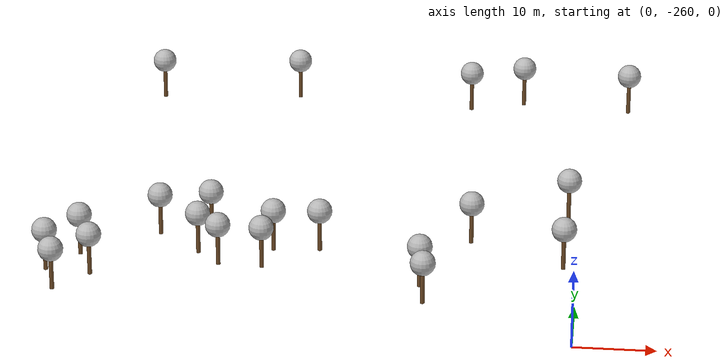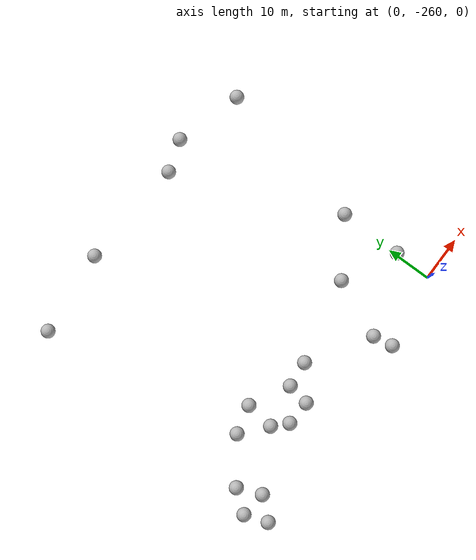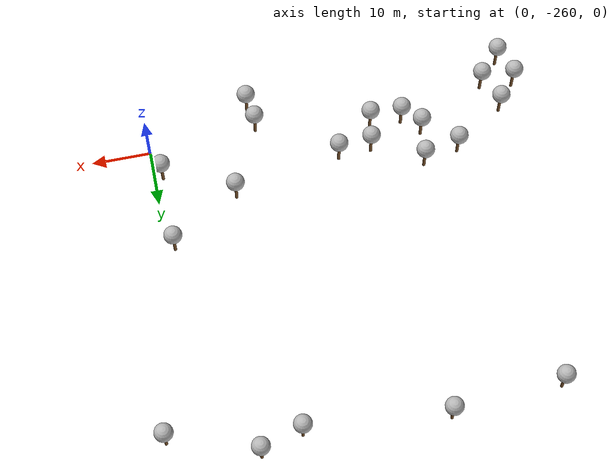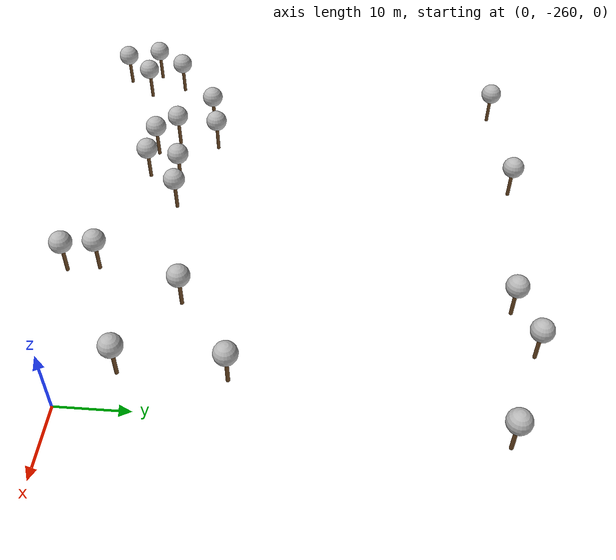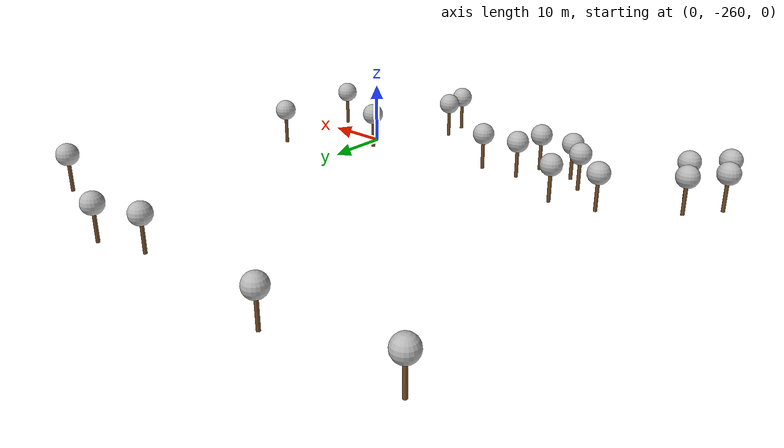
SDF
<sdf version="1.7">
 <world name="default">
  <model name="tree_simple_0_clone_2">
   <static>1</static>
   <link name="link">
    <pose>0 0 0.1 0 -0 0</pose>
    <inertial>
     <mass>666</mass>
     <inertia>
      <ixx>0.0861167</ixx>
      <ixy>0</ixy>
      <ixz>0</ixz>
      <iyy>0.0861167</iyy>
      <iyz>0</iyz>
      <izz>0.0861167</izz>
     </inertia>
    </inertial>
    <collision name="collision_trunk">
     <pose>0 0 2 0 -0 0</pose>
     <geometry><cylinder><radius>0.25</radius><length>4</length></cylinder></geometry>
     <surface>
      <contact>
       <poissons_ratio>0.347</poissons_ratio>
       <elastic_modulus>8.8e+09</elastic_modulus>
       <ode><kp>100000</kp><kd>100</kd><max_vel>100</max_vel><min_depth>0.001</min_depth></ode>
      </contact>
      <friction>
       <torsional>
        <coefficient>1</coefficient>
        <use_patch_radius>0</use_patch_radius>
        <surface_radius>0.01</surface_radius>
       </torsional>
      </friction>
     </surface>
    </collision>
    <collision name="collision_treetop">
     <pose>0 0 5.2 0 -0 0</pose>
     <geometry><sphere><radius>1.5</radius></sphere></geometry>
     <surface>
      <contact>
       <poissons_ratio>0.347</poissons_ratio>
       <elastic_modulus>8.8e+09</elastic_modulus>
       <ode><kp>100000</kp><kd>100</kd><max_vel>100</max_vel><min_depth>0.001</min_depth></ode>
      </contact>
      <friction>
       <torsional>
        <coefficient>1</coefficient>
        <use_patch_radius>0</use_patch_radius>
        <surface_radius>0.01</surface_radius>
       </torsional>
      </friction>
     </surface>
    </collision>
    <visual name="trunk">
     <pose>0 0 2 0 -0 0</pose>
     <geometry><cylinder><radius>0.25</radius><length>4</length></cylinder></geometry>
     <material>
      <script>
       <uri>model://tree_simple/scripts</uri>
       <uri>model://tree_simple/materials/textures</uri>
       <name>TreeSimple/Trunk</name>
      </script>
     </material>
    </visual>
    <visual name="treetop">
     <pose>0 0 5.2 0 -0 0</pose>
     <geometry><sphere><radius>1.5</radius></sphere></geometry>
     <material>
      <script>
       <uri>model://tree_simple/scripts</uri>
       <uri>model://tree_simple/materials/textures</uri>
       <name>TreeSimple/Treetop</name>
      </script>
     </material>
    </visual>
   </link>
   <pose>-50.3149 -246.75 5.69981 0 -0 0</pose>
  </model>
  <model name="tree_simple_0_clone_2_clone_0">
   <static>1</static>
   <link name="link">
    <pose>0 0 0.1 0 -0 0</pose>
    <inertial>
     <mass>666</mass>
     <inertia>
      <ixx>0.0861167</ixx>
      <ixy>0</ixy>
      <ixz>0</ixz>
      <iyy>0.0861167</iyy>
      <iyz>0</iyz>
      <izz>0.0861167</izz>
     </inertia>
    </inertial>
    <collision name="collision_trunk">
     <pose>0 0 2 0 -0 0</pose>
     <geometry><cylinder><radius>0.25</radius><length>4</length></cylinder></geometry>
     <surface>
      <contact>
       <poissons_ratio>0.347</poissons_ratio>
       <elastic_modulus>8.8e+09</elastic_modulus>
       <ode><kp>100000</kp><kd>100</kd><max_vel>100</max_vel><min_depth>0.001</min_depth></ode>
      </contact>
      <friction>
       <torsional>
        <coefficient>1</coefficient>
        <use_patch_radius>0</use_patch_radius>
        <surface_radius>0.01</surface_radius>
       </torsional>
      </friction>
     </surface>
    </collision>
    <collision name="collision_treetop">
     <pose>0 0 5.2 0 -0 0</pose>
     <geometry><sphere><radius>1.5</radius></sphere></geometry>
     <surface>
      <contact>
       <poissons_ratio>0.347</poissons_ratio>
       <elastic_modulus>8.8e+09</elastic_modulus>
       <ode><kp>100000</kp><kd>100</kd><max_vel>100</max_vel><min_depth>0.001</min_depth></ode>
      </contact>
      <friction>
       <torsional>
        <coefficient>1</coefficient>
        <use_patch_radius>0</use_patch_radius>
        <surface_radius>0.01</surface_radius>
       </torsional>
      </friction>
     </surface>
    </collision>
    <visual name="trunk">
     <pose>0 0 2 0 -0 0</pose>
     <geometry><cylinder><radius>0.25</radius><length>4</length></cylinder></geometry>
     <material>
      <script>
       <uri>model://tree_simple/scripts</uri>
       <uri>model://tree_simple/materials/textures</uri>
       <name>TreeSimple/Trunk</name>
      </script>
     </material>
    </visual>
    <visual name="treetop">
     <pose>0 0 5.2 0 -0 0</pose>
     <geometry><sphere><radius>1.5</radius></sphere></geometry>
     <material>
      <script>
       <uri>model://tree_simple/scripts</uri>
       <uri>model://tree_simple/materials/textures</uri>
       <name>TreeSimple/Treetop</name>
      </script>
     </material>
    </visual>
   </link>
   <pose>-42.3253 -254.089 5.69982 0 -0 0</pose>
  </model>
  <model name="tree_simple_0_clone_1_clone_0_clone_0">
   <static>1</static>
   <link name="link">
    <pose>0 0 0.1 0 -0 0</pose>
    <inertial>
     <mass>666</mass>
     <inertia>
      <ixx>0.0861167</ixx>
      <ixy>0</ixy>
      <ixz>0</ixz>
      <iyy>0.0861167</iyy>
      <iyz>0</iyz>
      <izz>0.0861167</izz>
     </inertia>
    </inertial>
    <collision name="collision_trunk">
     <pose>0 0 2 0 -0 0</pose>
     <geometry><cylinder><radius>0.25</radius><length>4</length></cylinder></geometry>
     <surface>
      <contact>
       <poissons_ratio>0.347</poissons_ratio>
       <elastic_modulus>8.8e+09</elastic_modulus>
       <ode><kp>100000</kp><kd>100</kd><max_vel>100</max_vel><min_depth>0.001</min_depth></ode>
      </contact>
      <friction>
       <torsional>
        <coefficient>1</coefficient>
        <use_patch_radius>0</use_patch_radius>
        <surface_radius>0.01</surface_radius>
       </torsional>
      </friction>
     </surface>
    </collision>
    <collision name="collision_treetop">
     <pose>0 0 5.2 0 -0 0</pose>
     <geometry><sphere><radius>1.5</radius></sphere></geometry>
     <surface>
      <contact>
       <poissons_ratio>0.347</poissons_ratio>
       <elastic_modulus>8.8e+09</elastic_modulus>
       <ode><kp>100000</kp><kd>100</kd><max_vel>100</max_vel><min_depth>0.001</min_depth></ode>
      </contact>
      <friction>
       <torsional>
        <coefficient>1</coefficient>
        <use_patch_radius>0</use_patch_radius>
        <surface_radius>0.01</surface_radius>
       </torsional>
      </friction>
     </surface>
    </collision>
    <visual name="trunk">
     <pose>0 0 2 0 -0 0</pose>
     <geometry><cylinder><radius>0.25</radius><length>4</length></cylinder></geometry>
     <material>
      <script>
       <uri>model://tree_simple/scripts</uri>
       <uri>model://tree_simple/materials/textures</uri>
       <name>TreeSimple/Trunk</name>
      </script>
     </material>
    </visual>
    <visual name="treetop">
     <pose>0 0 5.2 0 -0 0</pose>
     <geometry><sphere><radius>1.5</radius></sphere></geometry>
     <material>
      <script>
       <uri>model://tree_simple/scripts</uri>
       <uri>model://tree_simple/materials/textures</uri>
       <name>TreeSimple/Treetop</name>
      </script>
     </material>
    </visual>
   </link>
   <pose>-38.3659 -201.664 4.24809 0 -0 0</pose>
  </model>
  <model name="tree_simple_0_clone_1_clone_0_clone_3">
   <static>1</static>
   <link name="link">
    <pose>0 0 0.1 0 -0 0</pose>
    <inertial>
     <mass>666</mass>
     <inertia>
      <ixx>0.0861167</ixx>
      <ixy>0</ixy>
      <ixz>0</ixz>
      <iyy>0.0861167</iyy>
      <iyz>0</iyz>
      <izz>0.0861167</izz>
     </inertia>
    </inertial>
    <collision name="collision_trunk">
     <pose>0 0 2 0 -0 0</pose>
     <geometry><cylinder><radius>0.25</radius><length>4</length></cylinder></geometry>
     <surface>
      <contact>
       <poissons_ratio>0.347</poissons_ratio>
       <elastic_modulus>8.8e+09</elastic_modulus>
       <ode><kp>100000</kp><kd>100</kd><max_vel>100</max_vel><min_depth>0.001</min_depth></ode>
      </contact>
      <friction>
       <torsional>
        <coefficient>1</coefficient>
        <use_patch_radius>0</use_patch_radius>
        <surface_radius>0.01</surface_radius>
       </torsional>
      </friction>
     </surface>
    </collision>
    <collision name="collision_treetop">
     <pose>0 0 5.2 0 -0 0</pose>
     <geometry><sphere><radius>1.5</radius></sphere></geometry>
     <surface>
      <contact>
       <poissons_ratio>0.347</poissons_ratio>
       <elastic_modulus>8.8e+09</elastic_modulus>
       <ode><kp>100000</kp><kd>100</kd><max_vel>100</max_vel><min_depth>0.001</min_depth></ode>
      </contact>
      <friction>
       <torsional>
        <coefficient>1</coefficient>
        <use_patch_radius>0</use_patch_radius>
        <surface_radius>0.01</surface_radius>
       </torsional>
      </friction>
     </surface>
    </collision>
    <visual name="trunk">
     <pose>0 0 2 0 -0 0</pose>
     <geometry><cylinder><radius>0.25</radius><length>4</length></cylinder></geometry>
     <material>
      <script>
       <uri>model://tree_simple/scripts</uri>
       <uri>model://tree_simple/materials/textures</uri>
       <name>TreeSimple/Trunk</name>
      </script>
     </material>
    </visual>
    <visual name="treetop">
     <pose>0 0 5.2 0 -0 0</pose>
     <geometry><sphere><radius>1.5</radius></sphere></geometry>
     <material>
      <script>
       <uri>model://tree_simple/scripts</uri>
       <uri>model://tree_simple/materials/textures</uri>
       <name>TreeSimple/Treetop</name>
      </script>
     </material>
    </visual>
   </link>
   <pose>-15.3553 -203.531 4.24809 0 -0 0</pose>
  </model>
  <model name="tree_simple_0_clone_1_clone_0_clone_3_clone_2">
   <static>1</static>
   <link name="link">
    <pose>0 0 0.1 0 -0 0</pose>
    <inertial>
     <mass>666</mass>
     <inertia>
      <ixx>0.0861167</ixx>
      <ixy>0</ixy>
      <ixz>0</ixz>
      <iyy>0.0861167</iyy>
      <iyz>0</iyz>
      <izz>0.0861167</izz>
     </inertia>
    </inertial>
    <collision name="collision_trunk">
     <pose>0 0 2 0 -0 0</pose>
     <geometry><cylinder><radius>0.25</radius><length>4</length></cylinder></geometry>
     <surface>
      <contact>
       <poissons_ratio>0.347</poissons_ratio>
       <elastic_modulus>8.8e+09</elastic_modulus>
       <ode><kp>100000</kp><kd>100</kd><max_vel>100</max_vel><min_depth>0.001</min_depth></ode>
      </contact>
      <friction>
       <torsional>
        <coefficient>1</coefficient>
        <use_patch_radius>0</use_patch_radius>
        <surface_radius>0.01</surface_radius>
       </torsional>
      </friction>
     </surface>
    </collision>
    <collision name="collision_treetop">
     <pose>0 0 5.2 0 -0 0</pose>
     <geometry><sphere><radius>1.5</radius></sphere></geometry>
     <surface>
      <contact>
       <poissons_ratio>0.347</poissons_ratio>
       <elastic_modulus>8.8e+09</elastic_modulus>
       <ode><kp>100000</kp><kd>100</kd><max_vel>100</max_vel><min_depth>0.001</min_depth></ode>
      </contact>
      <friction>
       <torsional>
        <coefficient>1</coefficient>
        <use_patch_radius>0</use_patch_radius>
        <surface_radius>0.01</surface_radius>
       </torsional>
      </friction>
     </surface>
    </collision>
    <visual name="trunk">
     <pose>0 0 2 0 -0 0</pose>
     <geometry><cylinder><radius>0.25</radius><length>4</length></cylinder></geometry>
     <material>
      <script>
       <uri>model://tree_simple/scripts</uri>
       <uri>model://tree_simple/materials/textures</uri>
       <name>TreeSimple/Trunk</name>
      </script>
     </material>
    </visual>
    <visual name="treetop">
     <pose>0 0 5.2 0 -0 0</pose>
     <geometry><sphere><radius>1.5</radius></sphere></geometry>
     <material>
      <script>
       <uri>model://tree_simple/scripts</uri>
       <uri>model://tree_simple/materials/textures</uri>
       <name>TreeSimple/Treetop</name>
      </script>
     </material>
    </visual>
   </link>
   <pose>-8.51965 -201.355 4.24809 0 -0 0</pose>
  </model>
  <model name="tree_simple_0_clone_1_clone_0_clone_clone">
   <static>1</static>
   <link name="link">
    <pose>0 0 0.1 0 -0 0</pose>
    <inertial>
     <mass>666</mass>
     <inertia>
      <ixx>0.0861167</ixx>
      <ixy>0</ixy>
      <ixz>0</ixz>
      <iyy>0.0861167</iyy>
      <iyz>0</iyz>
      <izz>0.0861167</izz>
     </inertia>
    </inertial>
    <collision name="collision_trunk">
     <pose>0 0 2 0 -0 0</pose>
     <geometry><cylinder><radius>0.25</radius><length>4</length></cylinder></geometry>
     <surface>
      <contact>
       <poissons_ratio>0.347</poissons_ratio>
       <elastic_modulus>8.8e+09</elastic_modulus>
       <ode><kp>100000</kp><kd>100</kd><max_vel>100</max_vel><min_depth>0.001</min_depth></ode>
      </contact>
      <friction>
       <torsional>
        <coefficient>1</coefficient>
        <use_patch_radius>0</use_patch_radius>
        <surface_radius>0.01</surface_radius>
       </torsional>
      </friction>
     </surface>
    </collision>
    <collision name="collision_treetop">
     <pose>0 0 5.2 0 -0 0</pose>
     <geometry><sphere><radius>1.5</radius></sphere></geometry>
     <surface>
      <contact>
       <poissons_ratio>0.347</poissons_ratio>
       <elastic_modulus>8.8e+09</elastic_modulus>
       <ode><kp>100000</kp><kd>100</kd><max_vel>100</max_vel><min_depth>0.001</min_depth></ode>
      </contact>
      <friction>
       <torsional>
        <coefficient>1</coefficient>
        <use_patch_radius>0</use_patch_radius>
        <surface_radius>0.01</surface_radius>
       </torsional>
      </friction>
     </surface>
    </collision>
    <visual name="trunk">
     <pose>0 0 2 0 -0 0</pose>
     <geometry><cylinder><radius>0.25</radius><length>4</length></cylinder></geometry>
     <material>
      <script>
       <uri>model://tree_simple/scripts</uri>
       <uri>model://tree_simple/materials/textures</uri>
       <name>TreeSimple/Trunk</name>
      </script>
     </material>
    </visual>
    <visual name="treetop">
     <pose>0 0 5.2 0 -0 0</pose>
     <geometry><sphere><radius>1.5</radius></sphere></geometry>
     <material>
      <script>
       <uri>model://tree_simple/scripts</uri>
       <uri>model://tree_simple/materials/textures</uri>
       <name>TreeSimple/Treetop</name>
      </script>
     </material>
    </visual>
   </link>
   <pose>-56.3518 -203.26 4.24809 0 -0 0</pose>
  </model>
  <model name="tree_simple_0_clone_2_clone_clone_1">
   <static>1</static>
   <link name="link">
    <pose>0 0 0.1 0 -0 0</pose>
    <inertial>
     <mass>666</mass>
     <inertia>
      <ixx>0.0861167</ixx>
      <ixy>0</ixy>
      <ixz>0</ixz>
      <iyy>0.0861167</iyy>
      <iyz>0</iyz>
      <izz>0.0861167</izz>
     </inertia>
    </inertial>
    <collision name="collision_trunk">
     <pose>0 0 2 0 -0 0</pose>
     <geometry><cylinder><radius>0.25</radius><length>4</length></cylinder></geometry>
     <surface>
      <contact>
       <poissons_ratio>0.347</poissons_ratio>
       <elastic_modulus>8.8e+09</elastic_modulus>
       <ode><kp>100000</kp><kd>100</kd><max_vel>100</max_vel><min_depth>0.001</min_depth></ode>
      </contact>
      <friction>
       <torsional>
        <coefficient>1</coefficient>
        <use_patch_radius>0</use_patch_radius>
        <surface_radius>0.01</surface_radius>
       </torsional>
      </friction>
     </surface>
    </collision>
    <collision name="collision_treetop">
     <pose>0 0 5.2 0 -0 0</pose>
     <geometry><sphere><radius>1.5</radius></sphere></geometry>
     <surface>
      <contact>
       <poissons_ratio>0.347</poissons_ratio>
       <elastic_modulus>8.8e+09</elastic_modulus>
       <ode><kp>100000</kp><kd>100</kd><max_vel>100</max_vel><min_depth>0.001</min_depth></ode>
      </contact>
      <friction>
       <torsional>
        <coefficient>1</coefficient>
        <use_patch_radius>0</use_patch_radius>
        <surface_radius>0.01</surface_radius>
       </torsional>
      </friction>
     </surface>
    </collision>
    <visual name="trunk">
     <pose>0 0 2 0 -0 0</pose>
     <geometry><cylinder><radius>0.25</radius><length>4</length></cylinder></geometry>
     <material>
      <script>
       <uri>model://tree_simple/scripts</uri>
       <uri>model://tree_simple/materials/textures</uri>
       <name>TreeSimple/Trunk</name>
      </script>
     </material>
    </visual>
    <visual name="treetop">
     <pose>0 0 5.2 0 -0 0</pose>
     <geometry><sphere><radius>1.5</radius></sphere></geometry>
     <material>
      <script>
       <uri>model://tree_simple/scripts</uri>
       <uri>model://tree_simple/materials/textures</uri>
       <name>TreeSimple/Treetop</name>
      </script>
     </material>
    </visual>
   </link>
   <pose>-60.8732 -262.223 5.69982 0 -0 0</pose>
  </model>
  <model name="tree_simple_0_clone_2_clone_clone_2">
   <static>1</static>
   <link name="link">
    <pose>0 0 0.1 0 -0 0</pose>
    <inertial>
     <mass>666</mass>
     <inertia>
      <ixx>0.0861167</ixx>
      <ixy>0</ixy>
      <ixz>0</ixz>
      <iyy>0.0861167</iyy>
      <iyz>0</iyz>
      <izz>0.0861167</izz>
     </inertia>
    </inertial>
    <collision name="collision_trunk">
     <pose>0 0 2 0 -0 0</pose>
     <geometry><cylinder><radius>0.25</radius><length>4</length></cylinder></geometry>
     <surface>
      <contact>
       <poissons_ratio>0.347</poissons_ratio>
       <elastic_modulus>8.8e+09</elastic_modulus>
       <ode><kp>100000</kp><kd>100</kd><max_vel>100</max_vel><min_depth>0.001</min_depth></ode>
      </contact>
      <friction>
       <torsional>
        <coefficient>1</coefficient>
        <use_patch_radius>0</use_patch_radius>
        <surface_radius>0.01</surface_radius>
       </torsional>
      </friction>
     </surface>
    </collision>
    <collision name="collision_treetop">
     <pose>0 0 5.2 0 -0 0</pose>
     <geometry><sphere><radius>1.5</radius></sphere></geometry>
     <surface>
      <contact>
       <poissons_ratio>0.347</poissons_ratio>
       <elastic_modulus>8.8e+09</elastic_modulus>
       <ode><kp>100000</kp><kd>100</kd><max_vel>100</max_vel><min_depth>0.001</min_depth></ode>
      </contact>
      <friction>
       <torsional>
        <coefficient>1</coefficient>
        <use_patch_radius>0</use_patch_radius>
        <surface_radius>0.01</surface_radius>
       </torsional>
      </friction>
     </surface>
    </collision>
    <visual name="trunk">
     <pose>0 0 2 0 -0 0</pose>
     <geometry><cylinder><radius>0.25</radius><length>4</length></cylinder></geometry>
     <material>
      <script>
       <uri>model://tree_simple/scripts</uri>
       <uri>model://tree_simple/materials/textures</uri>
       <name>TreeSimple/Trunk</name>
      </script>
     </material>
    </visual>
    <visual name="treetop">
     <pose>0 0 5.2 0 -0 0</pose>
     <geometry><sphere><radius>1.5</radius></sphere></geometry>
     <material>
      <script>
       <uri>model://tree_simple/scripts</uri>
       <uri>model://tree_simple/materials/textures</uri>
       <name>TreeSimple/Treetop</name>
      </script>
     </material>
    </visual>
   </link>
   <pose>-62.502 -257.415 5.69982 0 -0 0</pose>
  </model>
  <model name="tree_simple_0_clone_2_clone_clone_4">
   <static>1</static>
   <link name="link">
    <pose>0 0 0.1 0 -0 0</pose>
    <inertial>
     <mass>666</mass>
     <inertia>
      <ixx>0.0861167</ixx>
      <ixy>0</ixy>
      <ixz>0</ixz>
      <iyy>0.0861167</iyy>
      <iyz>0</iyz>
      <izz>0.0861167</izz>
     </inertia>
    </inertial>
    <collision name="collision_trunk">
     <pose>0 0 2 0 -0 0</pose>
     <geometry><cylinder><radius>0.25</radius><length>4</length></cylinder></geometry>
     <surface>
      <contact>
       <poissons_ratio>0.347</poissons_ratio>
       <elastic_modulus>8.8e+09</elastic_modulus>
       <ode><kp>100000</kp><kd>100</kd><max_vel>100</max_vel><min_depth>0.001</min_depth></ode>
      </contact>
      <friction>
       <torsional>
        <coefficient>1</coefficient>
        <use_patch_radius>0</use_patch_radius>
        <surface_radius>0.01</surface_radius>
       </torsional>
      </friction>
     </surface>
    </collision>
    <collision name="collision_treetop">
     <pose>0 0 5.2 0 -0 0</pose>
     <geometry><sphere><radius>1.5</radius></sphere></geometry>
     <surface>
      <contact>
       <poissons_ratio>0.347</poissons_ratio>
       <elastic_modulus>8.8e+09</elastic_modulus>
       <ode><kp>100000</kp><kd>100</kd><max_vel>100</max_vel><min_depth>0.001</min_depth></ode>
      </contact>
      <friction>
       <torsional>
        <coefficient>1</coefficient>
        <use_patch_radius>0</use_patch_radius>
        <surface_radius>0.01</surface_radius>
       </torsional>
      </friction>
     </surface>
    </collision>
    <visual name="trunk">
     <pose>0 0 2 0 -0 0</pose>
     <geometry><cylinder><radius>0.25</radius><length>4</length></cylinder></geometry>
     <material>
      <script>
       <uri>model://tree_simple/scripts</uri>
       <uri>model://tree_simple/materials/textures</uri>
       <name>TreeSimple/Trunk</name>
      </script>
     </material>
    </visual>
    <visual name="treetop">
     <pose>0 0 5.2 0 -0 0</pose>
     <geometry><sphere><radius>1.5</radius></sphere></geometry>
     <material>
      <script>
       <uri>model://tree_simple/scripts</uri>
       <uri>model://tree_simple/materials/textures</uri>
       <name>TreeSimple/Treetop</name>
      </script>
     </material>
    </visual>
   </link>
   <pose>-57.1025 -258.054 5.69982 0 -0 0</pose>
  </model>
  <model name="tree_simple_0_clone_2_clone_clone_5">
   <static>1</static>
   <link name="link">
    <pose>0 0 0.1 0 -0 0</pose>
    <inertial>
     <mass>666</mass>
     <inertia>
      <ixx>0.0861167</ixx>
      <ixy>0</ixy>
      <ixz>0</ixz>
      <iyy>0.0861167</iyy>
      <iyz>0</iyz>
      <izz>0.0861167</izz>
     </inertia>
    </inertial>
    <collision name="collision_trunk">
     <pose>0 0 2 0 -0 0</pose>
     <geometry><cylinder><radius>0.25</radius><length>4</length></cylinder></geometry>
     <surface>
      <contact>
       <poissons_ratio>0.347</poissons_ratio>
       <elastic_modulus>8.8e+09</elastic_modulus>
       <ode><kp>100000</kp><kd>100</kd><max_vel>100</max_vel><min_depth>0.001</min_depth></ode>
      </contact>
      <friction>
       <torsional>
        <coefficient>1</coefficient>
        <use_patch_radius>0</use_patch_radius>
        <surface_radius>0.01</surface_radius>
       </torsional>
      </friction>
     </surface>
    </collision>
    <collision name="collision_treetop">
     <pose>0 0 5.2 0 -0 0</pose>
     <geometry><sphere><radius>1.5</radius></sphere></geometry>
     <surface>
      <contact>
       <poissons_ratio>0.347</poissons_ratio>
       <elastic_modulus>8.8e+09</elastic_modulus>
       <ode><kp>100000</kp><kd>100</kd><max_vel>100</max_vel><min_depth>0.001</min_depth></ode>
      </contact>
      <friction>
       <torsional>
        <coefficient>1</coefficient>
        <use_patch_radius>0</use_patch_radius>
        <surface_radius>0.01</surface_radius>
       </torsional>
      </friction>
     </surface>
    </collision>
    <visual name="trunk">
     <pose>0 0 2 0 -0 0</pose>
     <geometry><cylinder><radius>0.25</radius><length>4</length></cylinder></geometry>
     <material>
      <script>
       <uri>model://tree_simple/scripts</uri>
       <uri>model://tree_simple/materials/textures</uri>
       <name>TreeSimple/Trunk</name>
      </script>
     </material>
    </visual>
    <visual name="treetop">
     <pose>0 0 5.2 0 -0 0</pose>
     <geometry><sphere><radius>1.5</radius></sphere></geometry>
     <material>
      <script>
       <uri>model://tree_simple/scripts</uri>
       <uri>model://tree_simple/materials/textures</uri>
       <name>TreeSimple/Treetop</name>
      </script>
     </material>
    </visual>
   </link>
   <pose>-59.0984 -253.005 5.69982 0 -0 0</pose>
  </model>
  <model name="tree_simple_0_clone_2_clone_clone_7">
   <static>1</static>
   <link name="link">
    <pose>0 0 0.1 0 -0 0</pose>
    <inertial>
     <mass>666</mass>
     <inertia>
      <ixx>0.0861167</ixx>
      <ixy>0</ixy>
      <ixz>0</ixz>
      <iyy>0.0861167</iyy>
      <iyz>0</iyz>
      <izz>0.0861167</izz>
     </inertia>
    </inertial>
    <collision name="collision_trunk">
     <pose>0 0 2 0 -0 0</pose>
     <geometry><cylinder><radius>0.25</radius><length>4</length></cylinder></geometry>
     <surface>
      <contact>
       <poissons_ratio>0.347</poissons_ratio>
       <elastic_modulus>8.8e+09</elastic_modulus>
       <ode><kp>100000</kp><kd>100</kd><max_vel>100</max_vel><min_depth>0.001</min_depth></ode>
      </contact>
      <friction>
       <torsional>
        <coefficient>1</coefficient>
        <use_patch_radius>0</use_patch_radius>
        <surface_radius>0.01</surface_radius>
       </torsional>
      </friction>
     </surface>
    </collision>
    <collision name="collision_treetop">
     <pose>0 0 5.2 0 -0 0</pose>
     <geometry><sphere><radius>1.5</radius></sphere></geometry>
     <surface>
      <contact>
       <poissons_ratio>0.347</poissons_ratio>
       <elastic_modulus>8.8e+09</elastic_modulus>
       <ode><kp>100000</kp><kd>100</kd><max_vel>100</max_vel><min_depth>0.001</min_depth></ode>
      </contact>
      <friction>
       <torsional>
        <coefficient>1</coefficient>
        <use_patch_radius>0</use_patch_radius>
        <surface_radius>0.01</surface_radius>
       </torsional>
      </friction>
     </surface>
    </collision>
    <visual name="trunk">
     <pose>0 0 2 0 -0 0</pose>
     <geometry><cylinder><radius>0.25</radius><length>4</length></cylinder></geometry>
     <material>
      <script>
       <uri>model://tree_simple/scripts</uri>
       <uri>model://tree_simple/materials/textures</uri>
       <name>TreeSimple/Trunk</name>
      </script>
     </material>
    </visual>
    <visual name="treetop">
     <pose>0 0 5.2 0 -0 0</pose>
     <geometry><sphere><radius>1.5</radius></sphere></geometry>
     <material>
      <script>
       <uri>model://tree_simple/scripts</uri>
       <uri>model://tree_simple/materials/textures</uri>
       <name>TreeSimple/Treetop</name>
      </script>
     </material>
    </visual>
   </link>
   <pose>-44.3031 -245.304 5.69982 0 -0 0</pose>
  </model>
  <model name="tree_simple_0_clone_2_clone_clone_8">
   <static>1</static>
   <link name="link">
    <pose>0 0 0.1 0 -0 0</pose>
    <inertial>
     <mass>666</mass>
     <inertia>
      <ixx>0.0861167</ixx>
      <ixy>0</ixy>
      <ixz>0</ixz>
      <iyy>0.0861167</iyy>
      <iyz>0</iyz>
      <izz>0.0861167</izz>
     </inertia>
    </inertial>
    <collision name="collision_trunk">
     <pose>0 0 2 0 -0 0</pose>
     <geometry><cylinder><radius>0.25</radius><length>4</length></cylinder></geometry>
     <surface>
      <contact>
       <poissons_ratio>0.347</poissons_ratio>
       <elastic_modulus>8.8e+09</elastic_modulus>
       <ode><kp>100000</kp><kd>100</kd><max_vel>100</max_vel><min_depth>0.001</min_depth></ode>
      </contact>
      <friction>
       <torsional>
        <coefficient>1</coefficient>
        <use_patch_radius>0</use_patch_radius>
        <surface_radius>0.01</surface_radius>
       </torsional>
      </friction>
     </surface>
    </collision>
    <collision name="collision_treetop">
     <pose>0 0 5.2 0 -0 0</pose>
     <geometry><sphere><radius>1.5</radius></sphere></geometry>
     <surface>
      <contact>
       <poissons_ratio>0.347</poissons_ratio>
       <elastic_modulus>8.8e+09</elastic_modulus>
       <ode><kp>100000</kp><kd>100</kd><max_vel>100</max_vel><min_depth>0.001</min_depth></ode>
      </contact>
      <friction>
       <torsional>
        <coefficient>1</coefficient>
        <use_patch_radius>0</use_patch_radius>
        <surface_radius>0.01</surface_radius>
       </torsional>
      </friction>
     </surface>
    </collision>
    <visual name="trunk">
     <pose>0 0 2 0 -0 0</pose>
     <geometry><cylinder><radius>0.25</radius><length>4</length></cylinder></geometry>
     <material>
      <script>
       <uri>model://tree_simple/scripts</uri>
       <uri>model://tree_simple/materials/textures</uri>
       <name>TreeSimple/Trunk</name>
      </script>
     </material>
    </visual>
    <visual name="treetop">
     <pose>0 0 5.2 0 -0 0</pose>
     <geometry><sphere><radius>1.5</radius></sphere></geometry>
     <material>
      <script>
       <uri>model://tree_simple/scripts</uri>
       <uri>model://tree_simple/materials/textures</uri>
       <name>TreeSimple/Treetop</name>
      </script>
     </material>
    </visual>
   </link>
   <pose>-36.2108 -249.734 5.69982 0 -0 0</pose>
  </model>
  <model name="tree_simple_0_clone_2_clone_clone_9">
   <static>1</static>
   <link name="link">
    <pose>0 0 0.1 0 -0 0</pose>
    <inertial>
     <mass>666</mass>
     <inertia>
      <ixx>0.0861167</ixx>
      <ixy>0</ixy>
      <ixz>0</ixz>
      <iyy>0.0861167</iyy>
      <iyz>0</iyz>
      <izz>0.0861167</izz>
     </inertia>
    </inertial>
    <collision name="collision_trunk">
     <pose>0 0 2 0 -0 0</pose>
     <geometry><cylinder><radius>0.25</radius><length>4</length></cylinder></geometry>
     <surface>
      <contact>
       <poissons_ratio>0.347</poissons_ratio>
       <elastic_modulus>8.8e+09</elastic_modulus>
       <ode><kp>100000</kp><kd>100</kd><max_vel>100</max_vel><min_depth>0.001</min_depth></ode>
      </contact>
      <friction>
       <torsional>
        <coefficient>1</coefficient>
        <use_patch_radius>0</use_patch_radius>
        <surface_radius>0.01</surface_radius>
       </torsional>
      </friction>
     </surface>
    </collision>
    <collision name="collision_treetop">
     <pose>0 0 5.2 0 -0 0</pose>
     <geometry><sphere><radius>1.5</radius></sphere></geometry>
     <surface>
      <contact>
       <poissons_ratio>0.347</poissons_ratio>
       <elastic_modulus>8.8e+09</elastic_modulus>
       <ode><kp>100000</kp><kd>100</kd><max_vel>100</max_vel><min_depth>0.001</min_depth></ode>
      </contact>
      <friction>
       <torsional>
        <coefficient>1</coefficient>
        <use_patch_radius>0</use_patch_radius>
        <surface_radius>0.01</surface_radius>
       </torsional>
      </friction>
     </surface>
    </collision>
    <visual name="trunk">
     <pose>0 0 2 0 -0 0</pose>
     <geometry><cylinder><radius>0.25</radius><length>4</length></cylinder></geometry>
     <material>
      <script>
       <uri>model://tree_simple/scripts</uri>
       <uri>model://tree_simple/materials/textures</uri>
       <name>TreeSimple/Trunk</name>
      </script>
     </material>
    </visual>
    <visual name="treetop">
     <pose>0 0 5.2 0 -0 0</pose>
     <geometry><sphere><radius>1.5</radius></sphere></geometry>
     <material>
      <script>
       <uri>model://tree_simple/scripts</uri>
       <uri>model://tree_simple/materials/textures</uri>
       <name>TreeSimple/Treetop</name>
      </script>
     </material>
    </visual>
   </link>
   <pose>-45.0982 -251.301 5.69982 0 -0 0</pose>
  </model>
  <model name="tree_simple_0_clone_2_clone_clone_10">
   <static>1</static>
   <link name="link">
    <pose>0 0 0.1 0 -0 0</pose>
    <inertial>
     <mass>666</mass>
     <inertia>
      <ixx>0.0861167</ixx>
      <ixy>0</ixy>
      <ixz>0</ixz>
      <iyy>0.0861167</iyy>
      <iyz>0</iyz>
      <izz>0.0861167</izz>
     </inertia>
    </inertial>
    <collision name="collision_trunk">
     <pose>0 0 2 0 -0 0</pose>
     <geometry><cylinder><radius>0.25</radius><length>4</length></cylinder></geometry>
     <surface>
      <contact>
       <poissons_ratio>0.347</poissons_ratio>
       <elastic_modulus>8.8e+09</elastic_modulus>
       <ode><kp>100000</kp><kd>100</kd><max_vel>100</max_vel><min_depth>0.001</min_depth></ode>
      </contact>
      <friction>
       <torsional>
        <coefficient>1</coefficient>
        <use_patch_radius>0</use_patch_radius>
        <surface_radius>0.01</surface_radius>
       </torsional>
      </friction>
     </surface>
    </collision>
    <collision name="collision_treetop">
     <pose>0 0 5.2 0 -0 0</pose>
     <geometry><sphere><radius>1.5</radius></sphere></geometry>
     <surface>
      <contact>
       <poissons_ratio>0.347</poissons_ratio>
       <elastic_modulus>8.8e+09</elastic_modulus>
       <ode><kp>100000</kp><kd>100</kd><max_vel>100</max_vel><min_depth>0.001</min_depth></ode>
      </contact>
      <friction>
       <torsional>
        <coefficient>1</coefficient>
        <use_patch_radius>0</use_patch_radius>
        <surface_radius>0.01</surface_radius>
       </torsional>
      </friction>
     </surface>
    </collision>
    <visual name="trunk">
     <pose>0 0 2 0 -0 0</pose>
     <geometry><cylinder><radius>0.25</radius><length>4</length></cylinder></geometry>
     <material>
      <script>
       <uri>model://tree_simple/scripts</uri>
       <uri>model://tree_simple/materials/textures</uri>
       <name>TreeSimple/Trunk</name>
      </script>
     </material>
    </visual>
    <visual name="treetop">
     <pose>0 0 5.2 0 -0 0</pose>
     <geometry><sphere><radius>1.5</radius></sphere></geometry>
     <material>
      <script>
       <uri>model://tree_simple/scripts</uri>
       <uri>model://tree_simple/materials/textures</uri>
       <name>TreeSimple/Treetop</name>
      </script>
     </material>
    </visual>
   </link>
   <pose>-37.0881 -254.372 5.69982 0 -0 0</pose>
  </model>
  <model name="tree_simple_0_clone_2_clone_clone_11">
   <static>1</static>
   <link name="link">
    <pose>0 0 0.1 0 -0 0</pose>
    <inertial>
     <mass>666</mass>
     <inertia>
      <ixx>0.0861167</ixx>
      <ixy>0</ixy>
      <ixz>0</ixz>
      <iyy>0.0861167</iyy>
      <iyz>0</iyz>
      <izz>0.0861167</izz>
     </inertia>
    </inertial>
    <collision name="collision_trunk">
     <pose>0 0 2 0 -0 0</pose>
     <geometry><cylinder><radius>0.25</radius><length>4</length></cylinder></geometry>
     <surface>
      <contact>
       <poissons_ratio>0.347</poissons_ratio>
       <elastic_modulus>8.8e+09</elastic_modulus>
       <ode><kp>100000</kp><kd>100</kd><max_vel>100</max_vel><min_depth>0.001</min_depth></ode>
      </contact>
      <friction>
       <torsional>
        <coefficient>1</coefficient>
        <use_patch_radius>0</use_patch_radius>
        <surface_radius>0.01</surface_radius>
       </torsional>
      </friction>
     </surface>
    </collision>
    <collision name="collision_treetop">
     <pose>0 0 5.2 0 -0 0</pose>
     <geometry><sphere><radius>1.5</radius></sphere></geometry>
     <surface>
      <contact>
       <poissons_ratio>0.347</poissons_ratio>
       <elastic_modulus>8.8e+09</elastic_modulus>
       <ode><kp>100000</kp><kd>100</kd><max_vel>100</max_vel><min_depth>0.001</min_depth></ode>
      </contact>
      <friction>
       <torsional>
        <coefficient>1</coefficient>
        <use_patch_radius>0</use_patch_radius>
        <surface_radius>0.01</surface_radius>
       </torsional>
      </friction>
     </surface>
    </collision>
    <visual name="trunk">
     <pose>0 0 2 0 -0 0</pose>
     <geometry><cylinder><radius>0.25</radius><length>4</length></cylinder></geometry>
     <material>
      <script>
       <uri>model://tree_simple/scripts</uri>
       <uri>model://tree_simple/materials/textures</uri>
       <name>TreeSimple/Trunk</name>
      </script>
     </material>
    </visual>
    <visual name="treetop">
     <pose>0 0 5.2 0 -0 0</pose>
     <geometry><sphere><radius>1.5</radius></sphere></geometry>
     <material>
      <script>
       <uri>model://tree_simple/scripts</uri>
       <uri>model://tree_simple/materials/textures</uri>
       <name>TreeSimple/Treetop</name>
      </script>
     </material>
    </visual>
   </link>
   <pose>-30.6886 -249.304 5.69982 0 -0 0</pose>
  </model>
  <model name="tree_simple_0_clone_2_clone_clone_11_clone">
   <static>1</static>
   <link name="link">
    <pose>0 0 0.1 0 -0 0</pose>
    <inertial>
     <mass>666</mass>
     <inertia>
      <ixx>0.0861167</ixx>
      <ixy>0</ixy>
      <ixz>0</ixz>
      <iyy>0.0861167</iyy>
      <iyz>0</iyz>
      <izz>0.0861167</izz>
     </inertia>
    </inertial>
    <collision name="collision_trunk">
     <pose>0 0 2 0 -0 0</pose>
     <geometry><cylinder><radius>0.25</radius><length>4</length></cylinder></geometry>
     <surface>
      <contact>
       <poissons_ratio>0.347</poissons_ratio>
       <elastic_modulus>8.8e+09</elastic_modulus>
       <ode><kp>100000</kp><kd>100</kd><max_vel>100</max_vel><min_depth>0.001</min_depth></ode>
      </contact>
      <friction>
       <torsional>
        <coefficient>1</coefficient>
        <use_patch_radius>0</use_patch_radius>
        <surface_radius>0.01</surface_radius>
       </torsional>
      </friction>
     </surface>
    </collision>
    <collision name="collision_treetop">
     <pose>0 0 5.2 0 -0 0</pose>
     <geometry><sphere><radius>1.5</radius></sphere></geometry>
     <surface>
      <contact>
       <poissons_ratio>0.347</poissons_ratio>
       <elastic_modulus>8.8e+09</elastic_modulus>
       <ode><kp>100000</kp><kd>100</kd><max_vel>100</max_vel><min_depth>0.001</min_depth></ode>
      </contact>
      <friction>
       <torsional>
        <coefficient>1</coefficient>
        <use_patch_radius>0</use_patch_radius>
        <surface_radius>0.01</surface_radius>
       </torsional>
      </friction>
     </surface>
    </collision>
    <visual name="trunk">
     <pose>0 0 2 0 -0 0</pose>
     <geometry><cylinder><radius>0.25</radius><length>4</length></cylinder></geometry>
     <material>
      <script>
       <uri>model://tree_simple/scripts</uri>
       <uri>model://tree_simple/materials/textures</uri>
       <name>TreeSimple/Trunk</name>
      </script>
     </material>
    </visual>
    <visual name="treetop">
     <pose>0 0 5.2 0 -0 0</pose>
     <geometry><sphere><radius>1.5</radius></sphere></geometry>
     <material>
      <script>
       <uri>model://tree_simple/scripts</uri>
       <uri>model://tree_simple/materials/textures</uri>
       <name>TreeSimple/Treetop</name>
      </script>
     </material>
    </visual>
   </link>
   <pose>-17.3999 -261.627 5.69982 0 -0 0</pose>
  </model>
  <model name="tree_simple_0_clone_2_clone_clone_11_clone_0">
   <static>1</static>
   <link name="link">
    <pose>0 0 0.1 0 -0 0</pose>
    <inertial>
     <mass>666</mass>
     <inertia>
      <ixx>0.0861167</ixx>
      <ixy>0</ixy>
      <ixz>0</ixz>
      <iyy>0.0861167</iyy>
      <iyz>0</iyz>
      <izz>0.0861167</izz>
     </inertia>
    </inertial>
    <collision name="collision_trunk">
     <pose>0 0 2 0 -0 0</pose>
     <geometry><cylinder><radius>0.25</radius><length>4</length></cylinder></geometry>
     <surface>
      <contact>
       <poissons_ratio>0.347</poissons_ratio>
       <elastic_modulus>8.8e+09</elastic_modulus>
       <ode><kp>100000</kp><kd>100</kd><max_vel>100</max_vel><min_depth>0.001</min_depth></ode>
      </contact>
      <friction>
       <torsional>
        <coefficient>1</coefficient>
        <use_patch_radius>0</use_patch_radius>
        <surface_radius>0.01</surface_radius>
       </torsional>
      </friction>
     </surface>
    </collision>
    <collision name="collision_treetop">
     <pose>0 0 5.2 0 -0 0</pose>
     <geometry><sphere><radius>1.5</radius></sphere></geometry>
     <surface>
      <contact>
       <poissons_ratio>0.347</poissons_ratio>
       <elastic_modulus>8.8e+09</elastic_modulus>
       <ode><kp>100000</kp><kd>100</kd><max_vel>100</max_vel><min_depth>0.001</min_depth></ode>
      </contact>
      <friction>
       <torsional>
        <coefficient>1</coefficient>
        <use_patch_radius>0</use_patch_radius>
        <surface_radius>0.01</surface_radius>
       </torsional>
      </friction>
     </surface>
    </collision>
    <visual name="trunk">
     <pose>0 0 2 0 -0 0</pose>
     <geometry><cylinder><radius>0.25</radius><length>4</length></cylinder></geometry>
     <material>
      <script>
       <uri>model://tree_simple/scripts</uri>
       <uri>model://tree_simple/materials/textures</uri>
       <name>TreeSimple/Trunk</name>
      </script>
     </material>
    </visual>
    <visual name="treetop">
     <pose>0 0 5.2 0 -0 0</pose>
     <geometry><sphere><radius>1.5</radius></sphere></geometry>
     <material>
      <script>
       <uri>model://tree_simple/scripts</uri>
       <uri>model://tree_simple/materials/textures</uri>
       <name>TreeSimple/Treetop</name>
      </script>
     </material>
    </visual>
   </link>
   <pose>-18.0691 -257.438 5.69982 0 -0 0</pose>
  </model>
  <model name="tree_simple_0_clone_2_clone_clone_11_clone_1">
   <static>1</static>
   <link name="link">
    <pose>0 0 0.1 0 -0 0</pose>
    <inertial>
     <mass>666</mass>
     <inertia>
      <ixx>0.0861167</ixx>
      <ixy>0</ixy>
      <ixz>0</ixz>
      <iyy>0.0861167</iyy>
      <iyz>0</iyz>
      <izz>0.0861167</izz>
     </inertia>
    </inertial>
    <collision name="collision_trunk">
     <pose>0 0 2 0 -0 0</pose>
     <geometry><cylinder><radius>0.25</radius><length>4</length></cylinder></geometry>
     <surface>
      <contact>
       <poissons_ratio>0.347</poissons_ratio>
       <elastic_modulus>8.8e+09</elastic_modulus>
       <ode><kp>100000</kp><kd>100</kd><max_vel>100</max_vel><min_depth>0.001</min_depth></ode>
      </contact>
      <friction>
       <torsional>
        <coefficient>1</coefficient>
        <use_patch_radius>0</use_patch_radius>
        <surface_radius>0.01</surface_radius>
       </torsional>
      </friction>
     </surface>
    </collision>
    <collision name="collision_treetop">
     <pose>0 0 5.2 0 -0 0</pose>
     <geometry><sphere><radius>1.5</radius></sphere></geometry>
     <surface>
      <contact>
       <poissons_ratio>0.347</poissons_ratio>
       <elastic_modulus>8.8e+09</elastic_modulus>
       <ode><kp>100000</kp><kd>100</kd><max_vel>100</max_vel><min_depth>0.001</min_depth></ode>
      </contact>
      <friction>
       <torsional>
        <coefficient>1</coefficient>
        <use_patch_radius>0</use_patch_radius>
        <surface_radius>0.01</surface_radius>
       </torsional>
      </friction>
     </surface>
    </collision>
    <visual name="trunk">
     <pose>0 0 2 0 -0 0</pose>
     <geometry><cylinder><radius>0.25</radius><length>4</length></cylinder></geometry>
     <material>
      <script>
       <uri>model://tree_simple/scripts</uri>
       <uri>model://tree_simple/materials/textures</uri>
       <name>TreeSimple/Trunk</name>
      </script>
     </material>
    </visual>
    <visual name="treetop">
     <pose>0 0 5.2 0 -0 0</pose>
     <geometry><sphere><radius>1.5</radius></sphere></geometry>
     <material>
      <script>
       <uri>model://tree_simple/scripts</uri>
       <uri>model://tree_simple/materials/textures</uri>
       <name>TreeSimple/Treetop</name>
      </script>
     </material>
    </visual>
   </link>
   <pose>-12.7361 -245.534 5.69982 0 -0 0</pose>
  </model>
  <model name="tree_simple_0_clone_2_clone_clone_11_clone_2">
   <static>1</static>
   <link name="link">
    <pose>0 0 0.1 0 -0 0</pose>
    <inertial>
     <mass>666</mass>
     <inertia>
      <ixx>0.0861167</ixx>
      <ixy>0</ixy>
      <ixz>0</ixz>
      <iyy>0.0861167</iyy>
      <iyz>0</iyz>
      <izz>0.0861167</izz>
     </inertia>
    </inertial>
    <collision name="collision_trunk">
     <pose>0 0 2 0 -0 0</pose>
     <geometry><cylinder><radius>0.25</radius><length>4</length></cylinder></geometry>
     <surface>
      <contact>
       <poissons_ratio>0.347</poissons_ratio>
       <elastic_modulus>8.8e+09</elastic_modulus>
       <ode><kp>100000</kp><kd>100</kd><max_vel>100</max_vel><min_depth>0.001</min_depth></ode>
      </contact>
      <friction>
       <torsional>
        <coefficient>1</coefficient>
        <use_patch_radius>0</use_patch_radius>
        <surface_radius>0.01</surface_radius>
       </torsional>
      </friction>
     </surface>
    </collision>
    <collision name="collision_treetop">
     <pose>0 0 5.2 0 -0 0</pose>
     <geometry><sphere><radius>1.5</radius></sphere></geometry>
     <surface>
      <contact>
       <poissons_ratio>0.347</poissons_ratio>
       <elastic_modulus>8.8e+09</elastic_modulus>
       <ode><kp>100000</kp><kd>100</kd><max_vel>100</max_vel><min_depth>0.001</min_depth></ode>
      </contact>
      <friction>
       <torsional>
        <coefficient>1</coefficient>
        <use_patch_radius>0</use_patch_radius>
        <surface_radius>0.01</surface_radius>
       </torsional>
      </friction>
     </surface>
    </collision>
    <visual name="trunk">
     <pose>0 0 2 0 -0 0</pose>
     <geometry><cylinder><radius>0.25</radius><length>4</length></cylinder></geometry>
     <material>
      <script>
       <uri>model://tree_simple/scripts</uri>
       <uri>model://tree_simple/materials/textures</uri>
       <name>TreeSimple/Trunk</name>
      </script>
     </material>
    </visual>
    <visual name="treetop">
     <pose>0 0 5.2 0 -0 0</pose>
     <geometry><sphere><radius>1.5</radius></sphere></geometry>
     <material>
      <script>
       <uri>model://tree_simple/scripts</uri>
       <uri>model://tree_simple/materials/textures</uri>
       <name>TreeSimple/Treetop</name>
      </script>
     </material>
    </visual>
   </link>
   <pose>5.32956 -205.844 5.69982 0 -0 0</pose>
  </model>
  <model name="tree_simple_0_clone_2_clone_clone_11_clone_1_clone">
   <static>1</static>
   <link name="link">
    <pose>0 0 0.1 0 -0 0</pose>
    <inertial>
     <mass>666</mass>
     <inertia>
      <ixx>0.0861167</ixx>
      <ixy>0</ixy>
      <ixz>0</ixz>
      <iyy>0.0861167</iyy>
      <iyz>0</iyz>
      <izz>0.0861167</izz>
     </inertia>
    </inertial>
    <collision name="collision_trunk">
     <pose>0 0 2 0 -0 0</pose>
     <geometry><cylinder><radius>0.25</radius><length>4</length></cylinder></geometry>
     <surface>
      <contact>
       <poissons_ratio>0.347</poissons_ratio>
       <elastic_modulus>8.8e+09</elastic_modulus>
       <ode><kp>100000</kp><kd>100</kd><max_vel>100</max_vel><min_depth>0.001</min_depth></ode>
      </contact>
      <friction>
       <torsional>
        <coefficient>1</coefficient>
        <use_patch_radius>0</use_patch_radius>
        <surface_radius>0.01</surface_radius>
       </torsional>
      </friction>
     </surface>
    </collision>
    <collision name="collision_treetop">
     <pose>0 0 5.2 0 -0 0</pose>
     <geometry><sphere><radius>1.5</radius></sphere></geometry>
     <surface>
      <contact>
       <poissons_ratio>0.347</poissons_ratio>
       <elastic_modulus>8.8e+09</elastic_modulus>
       <ode><kp>100000</kp><kd>100</kd><max_vel>100</max_vel><min_depth>0.001</min_depth></ode>
      </contact>
      <friction>
       <torsional>
        <coefficient>1</coefficient>
        <use_patch_radius>0</use_patch_radius>
        <surface_radius>0.01</surface_radius>
       </torsional>
      </friction>
     </surface>
    </collision>
    <visual name="trunk">
     <pose>0 0 2 0 -0 0</pose>
     <geometry><cylinder><radius>0.25</radius><length>4</length></cylinder></geometry>
     <material>
      <script>
       <uri>model://tree_simple/scripts</uri>
       <uri>model://tree_simple/materials/textures</uri>
       <name>TreeSimple/Trunk</name>
      </script>
     </material>
    </visual>
    <visual name="treetop">
     <pose>0 0 5.2 0 -0 0</pose>
     <geometry><sphere><radius>1.5</radius></sphere></geometry>
     <material>
      <script>
       <uri>model://tree_simple/scripts</uri>
       <uri>model://tree_simple/materials/textures</uri>
       <name>TreeSimple/Treetop</name>
      </script>
     </material>
    </visual>
   </link>
   <pose>-1.30489 -238.096 5.69982 0 -0 0</pose>
  </model>
  <model name="tree_simple_0_clone_2_clone_clone_11_clone_1_clone_0">
   <static>1</static>
   <link name="link">
    <pose>0 0 0.1 0 -0 0</pose>
    <inertial>
     <mass>666</mass>
     <inertia>
      <ixx>0.0861167</ixx>
      <ixy>0</ixy>
      <ixz>0</ixz>
      <iyy>0.0861167</iyy>
      <iyz>0</iyz>
      <izz>0.0861167</izz>
     </inertia>
    </inertial>
    <collision name="collision_trunk">
     <pose>0 0 2 0 -0 0</pose>
     <geometry><cylinder><radius>0.25</radius><length>4</length></cylinder></geometry>
     <surface>
      <contact>
       <poissons_ratio>0.347</poissons_ratio>
       <elastic_modulus>8.8e+09</elastic_modulus>
       <ode><kp>100000</kp><kd>100</kd><max_vel>100</max_vel><min_depth>0.001</min_depth></ode>
      </contact>
      <friction>
       <torsional>
        <coefficient>1</coefficient>
        <use_patch_radius>0</use_patch_radius>
        <surface_radius>0.01</surface_radius>
       </torsional>
      </friction>
     </surface>
    </collision>
    <collision name="collision_treetop">
     <pose>0 0 5.2 0 -0 0</pose>
     <geometry><sphere><radius>1.5</radius></sphere></geometry>
     <surface>
      <contact>
       <poissons_ratio>0.347</poissons_ratio>
       <elastic_modulus>8.8e+09</elastic_modulus>
       <ode><kp>100000</kp><kd>100</kd><max_vel>100</max_vel><min_depth>0.001</min_depth></ode>
      </contact>
      <friction>
       <torsional>
        <coefficient>1</coefficient>
        <use_patch_radius>0</use_patch_radius>
        <surface_radius>0.01</surface_radius>
       </torsional>
      </friction>
     </surface>
    </collision>
    <visual name="trunk">
     <pose>0 0 2 0 -0 0</pose>
     <geometry><cylinder><radius>0.25</radius><length>4</length></cylinder></geometry>
     <material>
      <script>
       <uri>model://tree_simple/scripts</uri>
       <uri>model://tree_simple/materials/textures</uri>
       <name>TreeSimple/Trunk</name>
      </script>
     </material>
    </visual>
    <visual name="treetop">
     <pose>0 0 5.2 0 -0 0</pose>
     <geometry><sphere><radius>1.5</radius></sphere></geometry>
     <material>
      <script>
       <uri>model://tree_simple/scripts</uri>
       <uri>model://tree_simple/materials/textures</uri>
       <name>TreeSimple/Treetop</name>
      </script>
     </material>
    </visual>
   </link>
   <pose>-1.44561 -251.383 5.69982 0 -0 0</pose>
  </model>
 </world>
</sdf>
